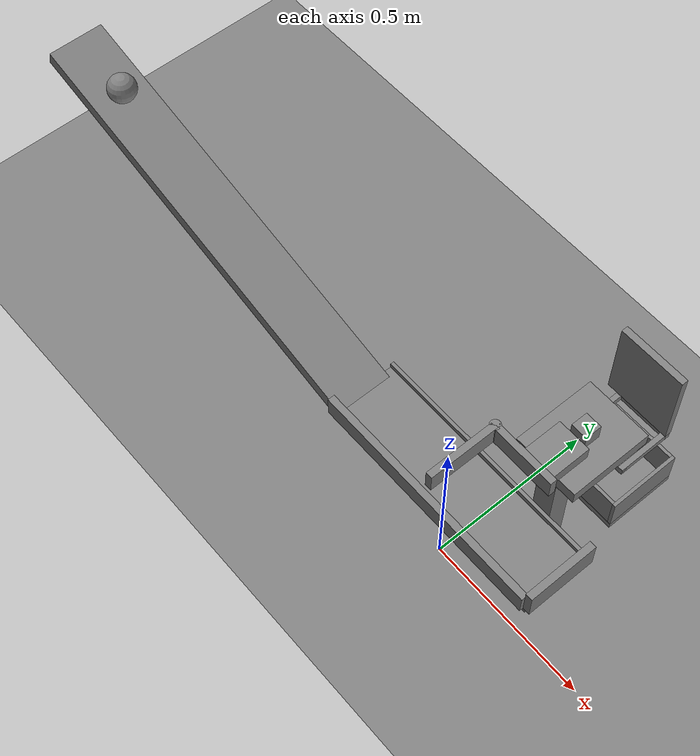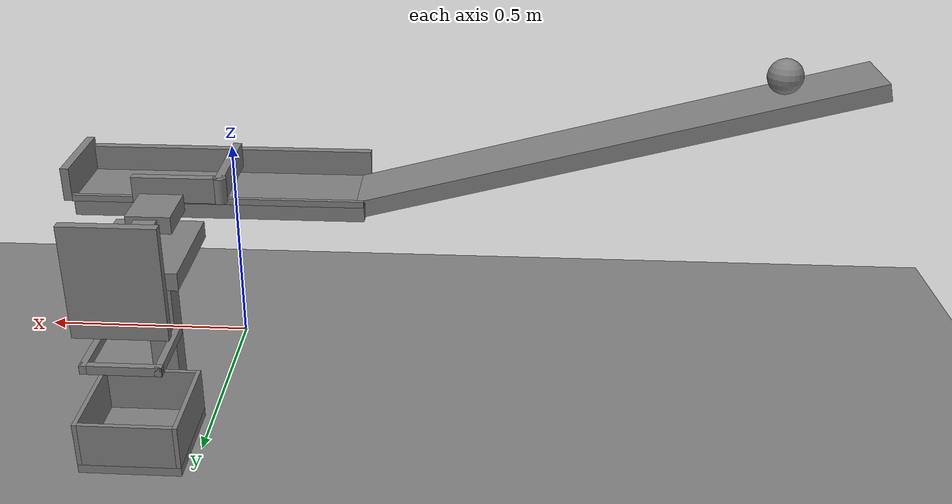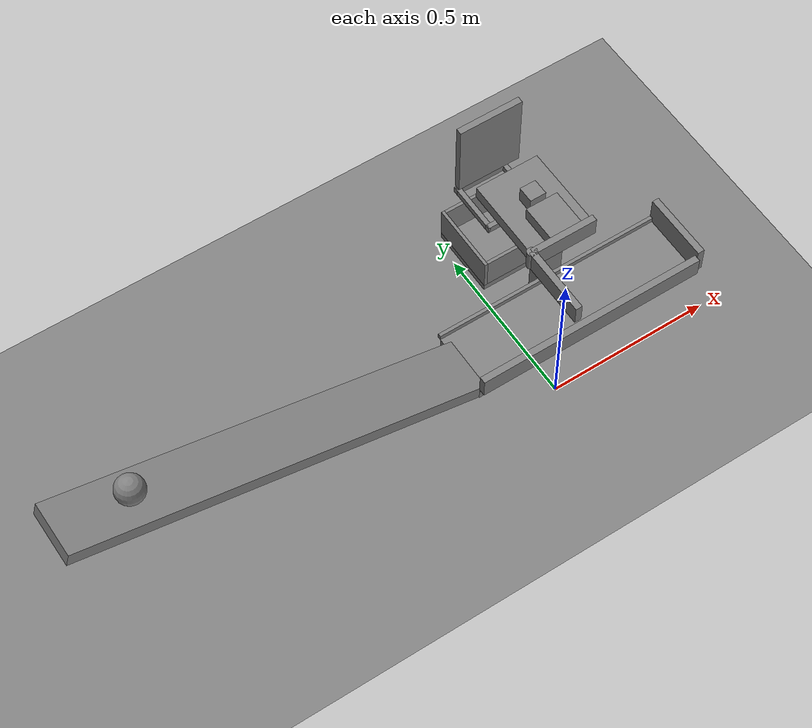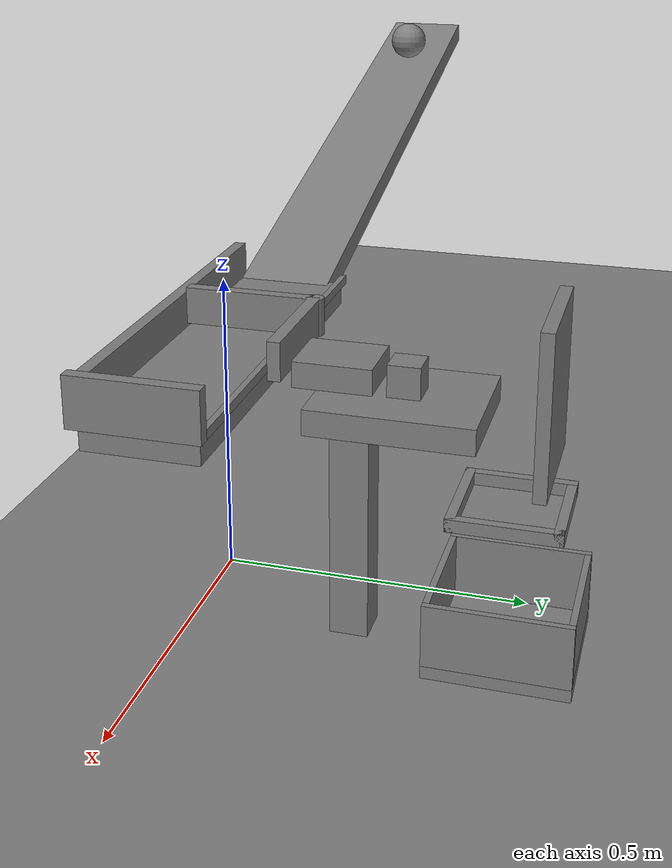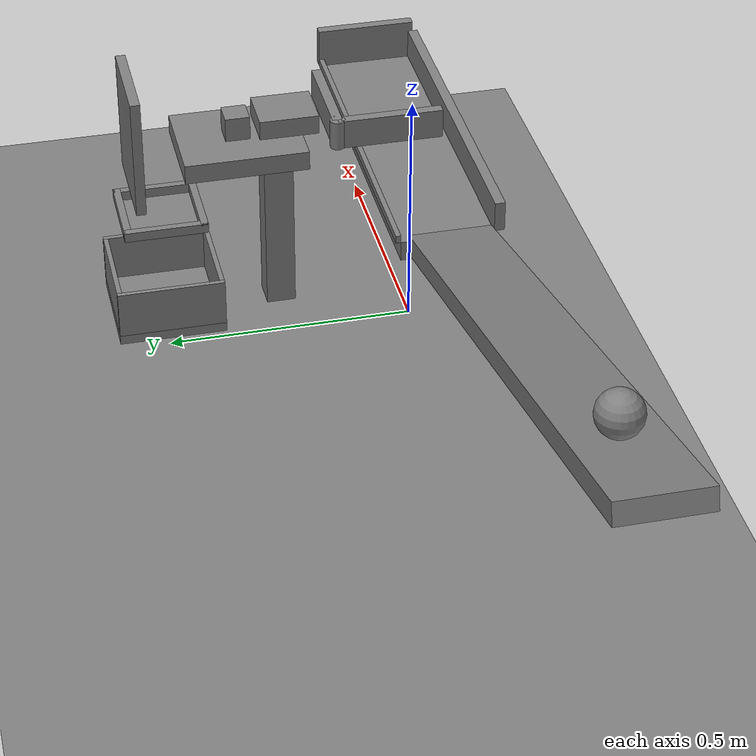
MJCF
<mujoco model="ball_paddle_slider_block">
  <option timestep="0.002"/>
  <worldbody>
    <light name="sun" pos="0 0 3" dir="0 0 -1"/>
    <geom name="floor" type="plane" pos="0 0 0" size="3 3 0.1"/>

    <!-- Ramp: 15 deg incline (1.2 m long) ending on a railed platform with an end wall; top surface z = 0.4 -->
    <body name="ramp" pos="0 0 0">
      <geom name="ramp_incline" type="box" pos="-0.8847 0 0.5360" euler="0 15 0" size="0.6 0.08 0.02"/>
      <geom name="ramp_platform" type="box" pos="0.02 0.01 0.38" size="0.34 0.09 0.02"/>
      <geom name="ramp_rail_neg" type="box" pos="0.02 -0.09 0.43" size="0.34 0.01 0.03"/>
      <geom name="ramp_rail_pos" type="box" pos="0.02 0.105 0.4075" size="0.34 0.005 0.0075"/>
      <geom name="ramp_endwall" type="box" pos="0.37 0.01 0.44" size="0.01 0.1 0.04"/>
    </body>

    <!-- Trigger ball, 1 m up the ramp surface -->
    <body name="ball" pos="-1.2556 0 0.6974">
      <freejoint name="ball_free"/>
      <geom name="ball_geom" type="sphere" size="0.04" mass="0.1" condim="6" friction="1 0.005 0.002"/>
    </body>

    <!-- Swinging gate: vertical hinge, arm A crosses ball path, arm B pushes slider -->
    <body name="paddle" pos="0 0.15 0.455">
      <joint name="paddle_hinge" type="hinge" axis="0 0 1" damping="0.0005"/>
      <geom name="paddle_hub" type="cylinder" size="0.015 0.03" mass="0.01"/>
      <geom name="paddle_armA" type="box" pos="0 -0.105 0" size="0.01 0.105 0.03" mass="0.025"/>
      <geom name="paddle_armB" type="box" pos="0.1 0 0" size="0.1 0.01 0.03" mass="0.025"/>
    </body>

    <!-- Horizontal striker sliding along +y over the ledge -->
    <body name="slider" pos="0.13 0.23 0.43">
      <joint name="slider_slide" type="slide" axis="0 1 0" limited="true" range="0 0.15" damping="0.01"/>
      <geom name="slider_geom" type="box" size="0.05 0.06 0.02" mass="0.05" friction="0.2"/>
    </body>

    <!-- Ledge with backstop wall beyond its edge; top surface z = 0.4, edge at y = 0.45 -->
    <body name="ledge" pos="0 0 0">
      <geom name="ledge_slab" type="box" pos="0.13 0.325 0.38" size="0.1 0.125 0.02" friction="0.2"/>
      <geom name="ledge_backstop" type="box" pos="0.13 0.54 0.425" size="0.1 0.01 0.125" friction="0.2"/>
      <geom name="ledge_post" type="box" pos="0.13 0.25 0.18" size="0.03 0.03 0.18"/>
    </body>

    <!-- Payload block -->
    <body name="block" pos="0.13 0.33 0.425">
      <freejoint name="block_free"/>
      <geom name="block_geom" type="box" size="0.025 0.025 0.025" mass="0.05" friction="0.2"/>
    </body>

    <!-- Square hoop below the drop gap -->
    <body name="hoop" pos="0.13 0.49 0.24">
      <geom name="hoop_xpos" type="box" pos="0.0775 0 0" size="0.0075 0.085 0.01"/>
      <geom name="hoop_xneg" type="box" pos="-0.0775 0 0" size="0.0075 0.085 0.01"/>
      <geom name="hoop_ypos" type="box" pos="0 0.0775 0" size="0.085 0.0075 0.01"/>
      <geom name="hoop_yneg" type="box" pos="0 -0.0775 0" size="0.085 0.0075 0.01"/>
    </body>

    <!-- Catching box on the floor -->
    <body name="box" pos="0.13 0.49 0">
      <geom name="box_base" type="box" pos="0 0 0.01" size="0.11 0.11 0.01" friction="1"/>
      <geom name="box_wall_xpos" type="box" pos="0.105 0 0.07" size="0.005 0.11 0.05" friction="1"/>
      <geom name="box_wall_xneg" type="box" pos="-0.105 0 0.07" size="0.005 0.11 0.05" friction="1"/>
      <geom name="box_wall_ypos" type="box" pos="0 0.105 0.07" size="0.1 0.005 0.05" friction="1"/>
      <geom name="box_wall_yneg" type="box" pos="0 -0.105 0.07" size="0.1 0.005 0.05" friction="1"/>
    </body>
  </worldbody>
</mujoco>
